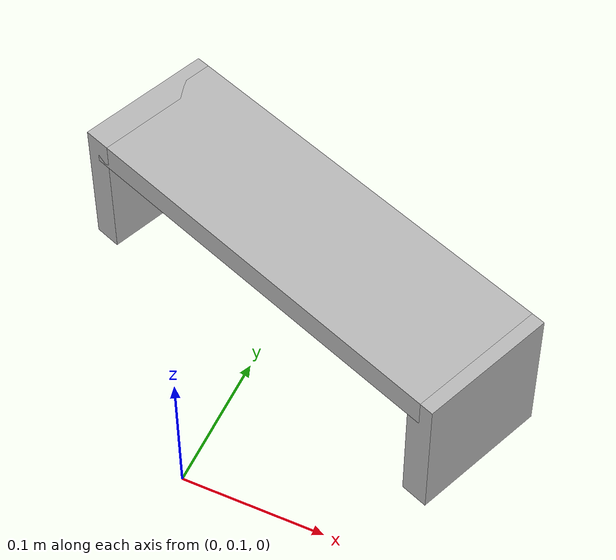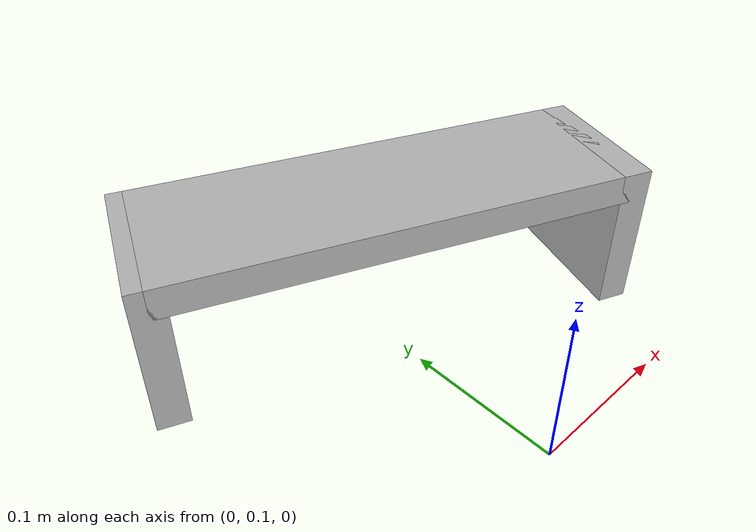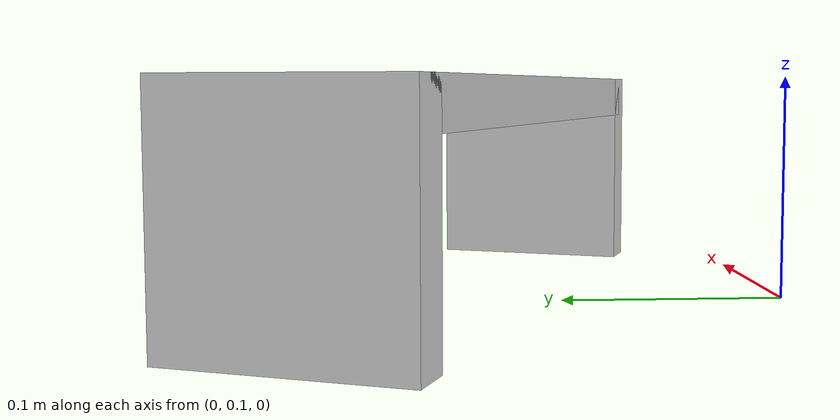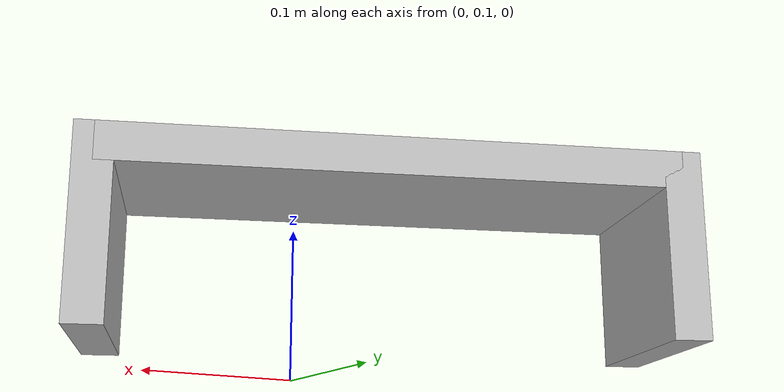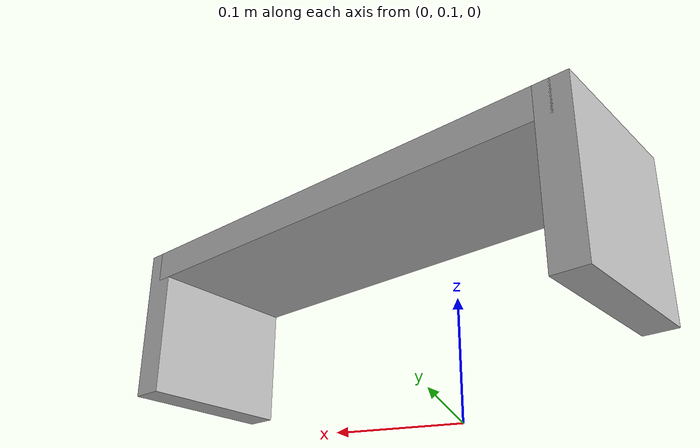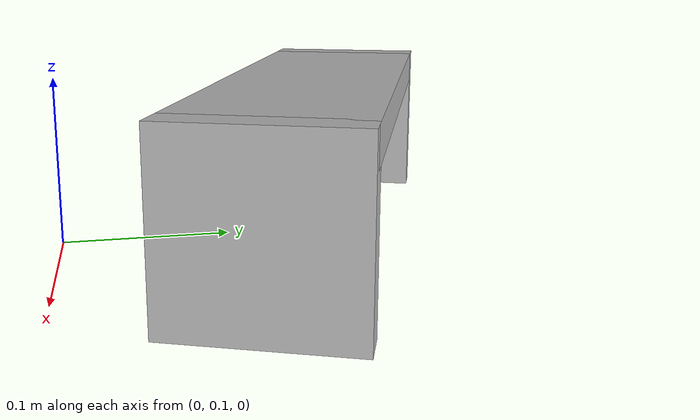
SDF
<?xml version="1.0" ?>
<sdf version="1.6">
  <model name="table1">
    <static>true</static>

    <!-- Pose globale dell'oggetto (equivalente a collision_objects[0].pose) -->
    <pose>0 0.205 0 0 0 1.2</pose>

    <link name="link">

      <!-- Piano superiore -->
      <collision name="top_collision">
        <pose>0.05 0.0 0.09 0 0 0</pose>
        <geometry>
          <box>
            <size>0.1 0.3 0.02</size>
          </box>
        </geometry>
      </collision>

      <visual name="top_visual">
        <pose>0.05 0.0 0.09 0 0 0</pose>
        <geometry>
          <box>
            <size>0.1 0.3 0.02</size>
          </box>
        </geometry>
      </visual>

      <!-- Gamba sinistra -->
      <collision name="leg_left_collision">
        <pose>0.05 -0.15 0.05 0 0 0</pose>
        <geometry>
          <box>
            <size>0.1 0.02 0.1</size>
          </box>
        </geometry>
      </collision>

      <visual name="leg_left_visual">
        <pose>0.05 -0.15 0.05 0 0 0</pose>
        <geometry>
          <box>
            <size>0.1 0.02 0.1</size>
          </box>
        </geometry>
      </visual>

      <!-- Gamba destra -->
      <collision name="leg_right_collision">
        <pose>0.05 0.15 0.05 0 0 0</pose>
        <geometry>
          <box>
            <size>0.1 0.02 0.1</size>
          </box>
        </geometry>
      </collision>

      <visual name="leg_right_visual">
        <pose>0.05 0.15 0.05 0 0 0</pose>
        <geometry>
          <box>
            <size>0.1 0.02 0.1</size>
          </box>
        </geometry>
      </visual>

    </link>
  </model>
</sdf>
